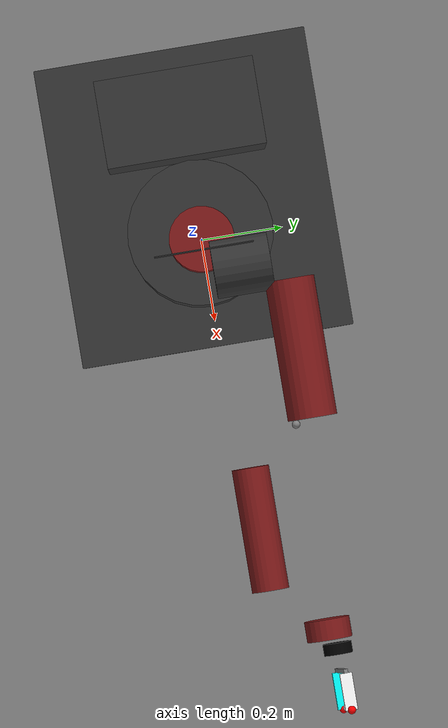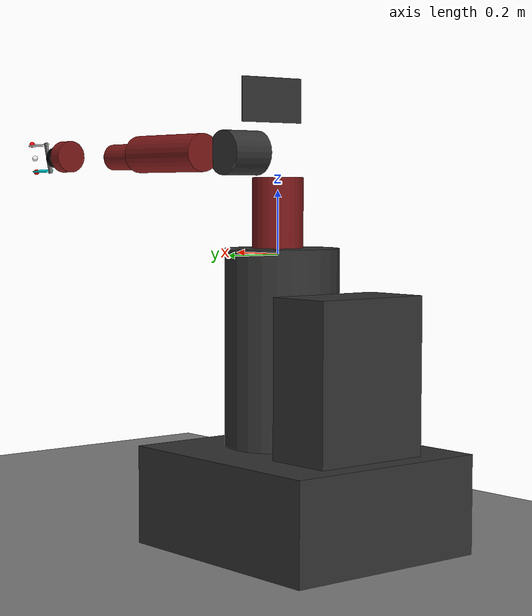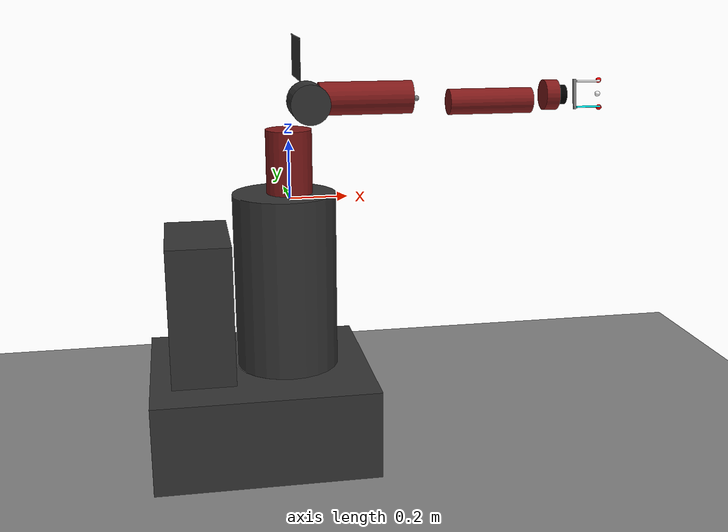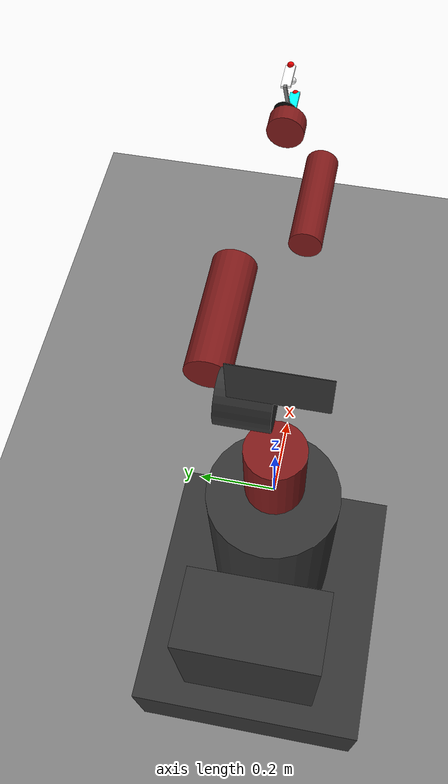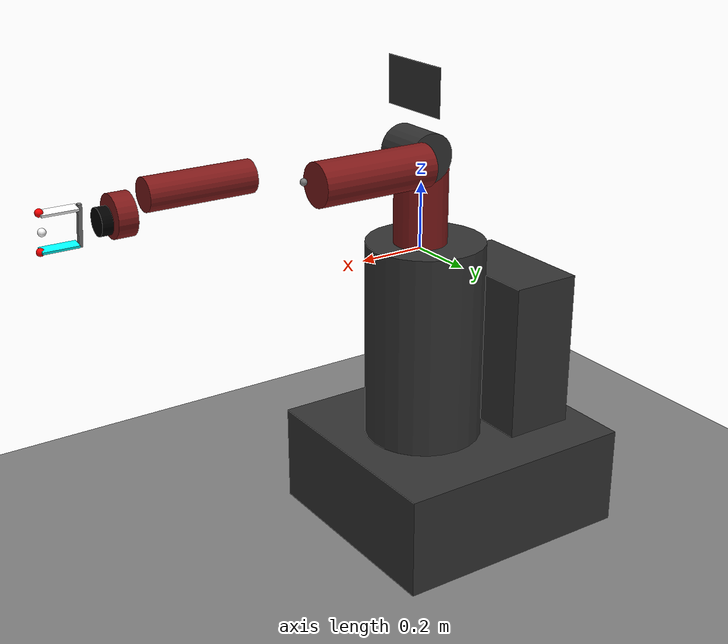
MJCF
<mujoco>
    <option timestep='0.0025' iterations="50" tolerance="1e-10" solver="Newton" jacobian="dense" cone="elliptic"/>
    <compiler angle="radian" inertiafromgeom="auto" inertiagrouprange="4 5"/>

    <keyframe>
        <key name="issue_0" mpos="0 0.6 0.2" mquat="1 0 1 0"/>
        <key name="issue_1" mpos="0 0.6 0.2" mquat="1 0 1 0" time="0.125"/>
    </keyframe>

    <asset>
        <texture type="skybox" builtin="gradient" rgb1=".50 .495 .48" rgb2=".50 .495 .48" width="32" height="32"/>
        <material name="xyz_col" rgba="0.3 0.3 1.0 0.5" shininess="0" specular="0.5"/>
    </asset>

    <default>
      <default class="xyz_base">
          <joint armature="0.001" damping="2" limited="true"/>
          <position ctrllimited="true" ctrlrange="0 1.57"/>
          <default class="base_col">
              <geom conaffinity="1" condim="4" contype="1" group="4"  material="xyz_col" solimp=".8 .9 .01" solref=".02 1"/>
          </default>
      </default>
    </default>

    <worldbody>
        <light castshadow="false" directional='true' diffuse='.3 .3 .3' specular='0.3 0.3 0.3' pos='-1 -1 1'
               dir='1 1 -1'/>
        <light directional='true' diffuse='.3 .3 .3' specular='0.3 0.3 0.3' pos='1 -1 1' dir='-1 1 -1'/>
        <light castshadow="false" directional='true' diffuse='.3 .3 .3' specular='0.3 0.3 0.3' pos='0 1 1'
               dir='0 -1 -1'/>

        <geom name="floor" size="4 4 .1" pos="0 0 -.913" conaffinity="1" contype="1" type="plane"
              condim="3"/>

        <!-- Arm -->
        <body name="base" childclass="xyz_base" pos="0 0 0">
            <site name="basesite" pos="0 0 0" size="0.01" />
            <inertial pos="0 0 0" mass="0" diaginertia="0 0 0" />
            <body name="controller_box" pos="0 0 0">
                <inertial pos="-0.325 0 -0.38" mass="46.64" diaginertia="1.71363 1.27988 0.809981" />
                <geom size="0.11 0.2 0.265" pos="-0.325 0 -0.38" type="box" rgba="0.2 0.2 0.2 1"/>
            </body>
            <body name="pedestal_feet" pos="0 0 0">
                <inertial pos="-0.1225 0 -0.758" mass="167.09" diaginertia="8.16095 9.59375 15.0785" />
                <geom size="0.385 0.35 0.155" pos="-0.1225 0 -0.758" type="box" rgba="0.2 0.2 0.2 1"
                    contype="0"
                    conaffinity="0"
                />
            </body>
            <body name="torso" pos="0 0 0">
                <inertial pos="0 0 0" mass="0.0001" diaginertia="1e-08 1e-08 1e-08" />
                <geom size="0.05 0.05 0.05" type="box" contype="0" conaffinity="0" group="1" rgba="0.2 0.2 0.2 1" />
            </body>
            <body name="pedestal" pos="0 0 0">
                <inertial pos="0 0 0" quat="0.659267 -0.259505 -0.260945 0.655692" mass="60.864" diaginertia="6.0869 5.81635 4.20915" />
                <geom size="0.18 0.31" pos="-0.02 0 -0.29" type="cylinder" rgba="0.2 0.2 0.2 1" />
            </body>
            <body name="right_arm_base_link" pos="0 0 0">
                <inertial pos="-0.0006241 -2.8025e-05 0.065404" quat="-0.209285 0.674441 0.227335 0.670558" mass="2.0687" diaginertia="0.00740351 0.00681776 0.00672942" />
                <geom size="0.08 0.12" pos="0 0 0.12" type="cylinder" rgba="0.5 0.1 0.1 1" />
                <body name="right_l0" pos="0 0 0.08">
                    <inertial pos="0.024366 0.010969 0.14363" quat="0.894823 0.00899958 -0.170275 0.412573" mass="5.3213" diaginertia="0.0651588 0.0510944 0.0186218" />
                    <joint name="right_j0" pos="0 0 0" axis="0 0 1" limited="true" range="-3.0503 3.0503" damping="10"/>
                    <body name="head" pos="0 0 0.2965">
                        <inertial pos="0.0053207 -2.6549e-05 0.1021" quat="0.999993 7.08405e-05 -0.00359857 -0.000626247" mass="1.5795" diaginertia="0.0118334 0.00827089 0.00496574" />
                        <body name="screen" pos="0.03 0 0.105" quat="0.5 0.5 0.5 0.5">
                            <inertial pos="0 0 0" mass="0.0001" diaginertia="1e-08 1e-08 1e-08" />
                            <geom size="0.12 0.07 0.001" type="box" contype="0" conaffinity="0" group="1" rgba="0.2 0.2 0.2 1" />
                        </body>
                    </body>
                    <body name="right_torso_itb" pos="-0.055 0 0.22" quat="0.707107 0 -0.707107 0">
                        <inertial pos="0 0 0" mass="0.0001" diaginertia="1e-08 1e-08 1e-08" />
                    </body>
                    <body name="right_l1" pos="0.081 0.05 0.237" quat="0.5 -0.5 0.5 0.5">
                        <inertial pos="-0.0030849 -0.026811 0.092521" quat="0.424888 0.891987 0.132364 -0.0794296" mass="4.505" diaginertia="0.0224339 0.0221624 0.0097097" />
                        <joint name="right_j1" pos="0 0 0" axis="0 0 1"
                                limited="true" range="-3.8 -0.5"
                                damping="10"/>
                        <body name="right_l2" pos="0 -0.14 0.1425" quat="0.707107 0.707107 0 0">
                            <inertial pos="-0.00016044 -0.014967 0.13582" quat="0.707831 -0.0524761 0.0516007 0.702537" mass="1.745" diaginertia="0.0257928 0.025506 0.00292515" />
                            <joint name="right_j2" pos="0 0 0" axis="0 0 1" limited="true" range="-3.0426 3.0426" damping="10"/>
                            <geom size="0.06 0.17" pos="0 0 0.08" type="cylinder" rgba="0.5 0.1 0.1 1" />
                            <body name="right_l3" pos="0 -0.042 0.26" quat="0.707107 -0.707107 0 0">
                                <site name="armsite" pos="0 0 0" size="0.01" />
                                <inertial pos="-0.0048135 -0.0281 -0.084154" quat="0.902999 0.385391 -0.0880901 0.168247" mass="2.5097" diaginertia="0.0102404 0.0096997 0.00369622" />
                                <joint name="right_j3" pos="0 0 0" axis="0 0 1" limited="true" range="-3.0439 3.0439" damping="10"/>
                                <body name="right_l4" pos="0 -0.125 -0.1265" quat="0.707107 0.707107 0 0">
                                    <inertial pos="-0.0018844 0.0069001 0.1341" quat="0.803612 0.031257 -0.0298334 0.593582" mass="1.1136" diaginertia="0.0136549 0.0135493 0.00127353" />
                                    <joint name="right_j4" pos="0 0 0" axis="0 0 1" limited="true" range="-2.9761 2.9761" damping="10" />
                                    <geom size="0.045 0.15" pos="0 0 0.11" type="cylinder" rgba="0.5 0.1 0.1 1" />
                                    <body name="right_arm_itb" pos="-0.055 0 0.075" quat="0.707107 0 -0.707107 0">
                                        <inertial pos="0 0 0" mass="0.0001" diaginertia="1e-08 1e-08 1e-08" />
                                    </body>
                                    <body name="right_l5" pos="0 0.031 0.275" quat="0.707107 -0.707107 0 0">
                                        <inertial pos="0.0061133 -0.023697 0.076416" quat="0.404076 0.9135 0.0473125 0.00158335" mass="1.5625" diaginertia="0.00474131 0.00422857 0.00190672" />
                                        <joint name="right_j5" pos="0 0 0" axis="0 0 1" limited="true" range="-2.9761 2.9761" damping="10"/>
                                        <body name="right_wrist" pos="0 0 0.10541" quat="0.707107 0.707107 0 0">
                                            <inertial pos="0 0 0.10541" quat="0.707107 0.707107 0 0" mass="0" diaginertia="0 0 0" />
                                        </body>
                                        <body name="right_l6" pos="0 -0.11 0.1053" quat="0.0616248 0.06163 -0.704416 0.704416">
                                            <inertial pos="-8.0726e-06 0.0085838 -0.0049566" quat="0.479044 0.515636 -0.513069 0.491322" mass="0.3292" diaginertia="0.000360258 0.000311068 0.000214974" />
                                            <joint name="right_j6" pos="0 0 0" axis="0 0 1" limited="true" range="-4.7124 4.7124" damping="10"/>
                                            <geom size="0.055 0.025" pos="0 0.015 -0.01" type="cylinder" rgba="0.5 0.1 0.1 1" />
                                            <body name="right_hand" pos="0 0 0.0245" quat="0.707107 0 0 0.707107">
                                                <inertial pos="1e-08 1e-08 1e-08" quat="0.820473 0.339851 -0.17592 0.424708" mass="1e-08" diaginertia="1e-08 1e-08 1e-08" />

                                                <geom size="0.035 0.014" pos="0 0 0.015" type="cylinder" rgba="0 0 0 1"/>
                                                <body name="hand" pos="0 0 0.12" quat="-1 0 1 0">
                                                    <site name="endEffector" pos="0.04 0 0" size="0.01" rgba='1 1 1 1' />
                                                    <geom name="rail" type="box" pos="-0.05 0 0" density="7850" size="0.005 0.055 0.005"  rgba="0.5 0.5 0.5 1.0" condim="3" friction="2 0.1 0.002"   />

                                                    <body name="rightclaw" pos="0 -0.05 0" >

                                                        <geom class="base_col" name="rightclaw_it" condim="4"  type="box" user="0" pos="0 0 0" size="0.045 0.003 0.015"  rgba="1 1 1 1.0"   />

                                                        <joint name="r_close" pos="0 0 0" axis="0 1 0" range= "0 0.04" armature="100" damping="1000" limited="true"  type="slide"/>
                                                        <site name="rightEndEffector" pos="0.045 0 0" size="0.01" rgba="1.0 0.0 0.0 1.0"/>
                                                        <body name="rightpad" pos ="0 .003 0" >
                                                            <geom name="rightpad_geom" condim="4"  type="box" user="0" pos="0 0 0" size="0.045 0.003 0.015" rgba="1 1 1 1.0" solimp="0.95 0.99 0.01" solref="0.01 1" friction="2 0.1 0.002" contype="1" conaffinity="1" mass="1"/>
                                                        </body>

                                                    </body>

                                                    <body name="leftclaw" pos="0 0.05 0">
                                                        <geom class="base_col" name="leftclaw_it" condim="4"  type="box" user="0" pos="0 0 0" size="0.045 0.003 0.015"  rgba="0 1 1 1.0"  />
                                                        <joint name="l_close" pos="0 0 0" axis="0 1 0" range= "-0.03 0" armature="100" damping="1000" limited="true"  type="slide"/>
                                                        <site name="leftEndEffector" pos="0.045 0 0" size="0.01" rgba="1.0 0.0 0.0 1.0"/>
                                                        <body name="leftpad" pos ="0 -.003 0" >
                                                            <geom name="leftpad_geom" condim="4"  type="box" user="0" pos="0 0 0" size="0.045 0.003 0.015" rgba="0 1 1 1.0" solimp="0.95 0.99 0.01" solref="0.01 1" friction="2 0.1 0.002"  contype="1" conaffinity="1" />
                                                        </body>

                                                    </body>
                                                </body>
                                            </body>
                                        </body>
                                    </body>
                                    <body name="right_l4_2" pos="0 0 0">
                                        <inertial pos="1e-08 1e-08 1e-08" quat="0.820473 0.339851 -0.17592 0.424708" mass="1e-08" diaginertia="1e-08 1e-08 1e-08" />
                                    </body>
                                </body>
                            </body>
                            <body name="right_l2_2" pos="0 0 0">
                                <inertial pos="1e-08 1e-08 1e-08" quat="0.820473 0.339851 -0.17592 0.424708" mass="1e-08" diaginertia="1e-08 1e-08 1e-08" />
                            </body>
                        </body>
                        <body name="right_l1_2" pos="0 0 0">
                            <inertial pos="1e-08 1e-08 1e-08" quat="0.820473 0.339851 -0.17592 0.424708" mass="1e-08" diaginertia="1e-08 1e-08 1e-08" />
                            <geom size="0.07 0.07" pos="0 0 0.035" type="cylinder" rgba="0.2 0.2 0.2 1"/>
                        </body>
                    </body>
                </body>
            </body>
        </body>

        <body mocap="true" name="mocap" pos="0 0 0">
            <geom conaffinity="0" contype="0" pos="0 0 0" rgba="0.0 0.5 0.5 1" size="0.01" type="sphere"></geom>
            <site name="mocap" pos="0 0 0" rgba="0.0 0.5 0.5 1" size="0.01" type="sphere"></site>
        </body>
    </worldbody>

    <!-- Control -->
    <equality>
        <weld body1="mocap" body2="hand" solref="0.02 1"></weld>
    </equality>
</mujoco>
